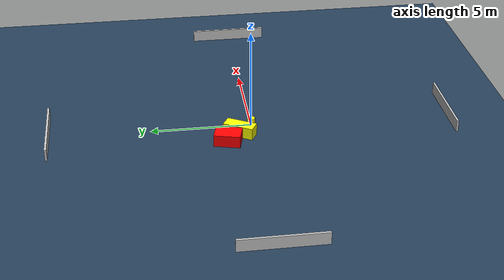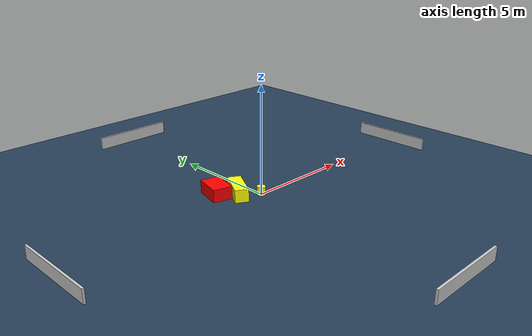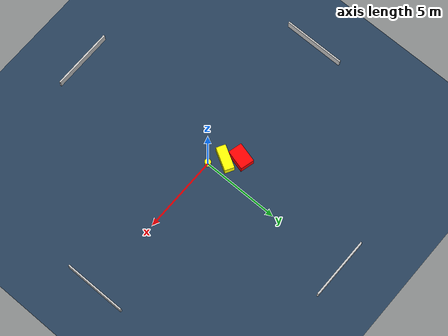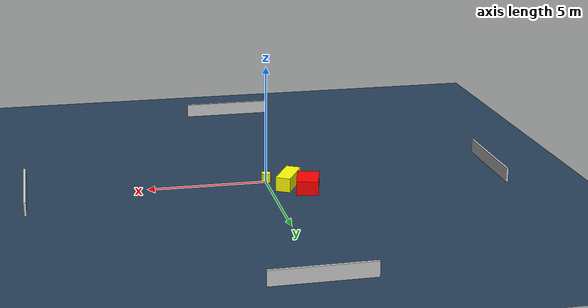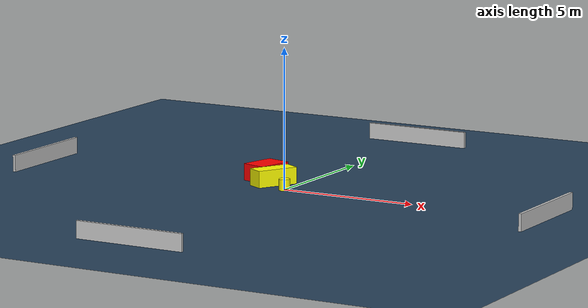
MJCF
<?xml version="1.0" ?>
<mujoco model="generated_environment">
  <option timestep="0.01" integrator="RK4" cone="elliptic"/>
  <default>
    <geom density="1"/>
  </default>
  <asset>
    <texture builtin="gradient" height="3072" name="skybox" rgb1="0.3 0.5 0.7" rgb2="0 0 0" type="skybox" width="512"/>
    <texture builtin="checker" height="300" name="groundplane" rgb1="0.2 0.3 0.4" rgb2="0.1 0.2 0.3" type="2d" width="300"/>
    <material name="groundplane" reflectance="0.2" texrepeat="5 5" texture="groundplane"/>
  </asset>
  <worldbody>
    <light dir="0 0 -1" directional="true" pos="0 0 1.5"/>
    <geom condim="3" friction="0.5 0.005 0.001" material="groundplane" name="floor" pos="0 0 0" size="0 0 0.05" type="plane"/>
    <body name="walls">
      <geom name="wall_1" condim="4" pos="-10.0 0.0 0.3" rgba="0.800000011920929 0.800000011920929 0.800000011920929 1.0" size="0.05 2.0 0.3" type="box"/>
      <geom name="wall_2" condim="4" pos="10.0 0.0 0.3" rgba="0.800000011920929 0.800000011920929 0.800000011920929 1.0" size="0.05 2.0 0.3" type="box"/>
      <geom name="wall_3" condim="4" pos="0.0 -10.0 0.3" rgba="0.800000011920929 0.800000011920929 0.800000011920929 1.0" size="2.0 0.05 0.3" type="box"/>
      <geom name="wall_4" condim="4" pos="0.0 10.0 0.3" rgba="0.800000011920929 0.800000011920929 0.800000011920929 1.0" size="2.0 0.05 0.3" type="box"/>
    </body>
    <body name="robot">
      <joint name="joint_x" type="slide" pos="0 0 0" axis="1 0 0"/>
      <joint name="joint_y" type="slide" pos="0 0 0" axis="0 1 0"/>
      <geom name="robot" type="cylinder" pos="0.0 0.0 0.2" size="0.2 0.2 0.0" mass="5.0" friction="1.0 0.005 0.0001" condim="4" rgba="1.0 1.0 0.0 1.0"/>
    </body>
    <body name="obstacle_1_movable">
      <geom name="obstacle_1_movable" condim="4" pos="-0.8191958076937108 0.6507931834089876 0.3" euler="0 0 330.61422302525955" friction="0.0 0.005 0.001" rgba="1.0 1.0 0.0 1.0" size="0.3113518400896181 0.7638181230405245 0.3" type="box" mass="0.1"/>
      <joint type="free"/>
    </body>
    <body name="obstacle_2_static">
      <geom name="obstacle_2_static" condim="4" pos="-1.5017383260469364 1.3130136137078126 0.3" euler="0 0 255.46307240967104" friction="0.0 0.005 0.001" rgba="1.0 0.0 0.0 1.0" size="0.6466321185573427 0.4554638974824185 0.3" type="box"/>
    </body>
  </worldbody>
  <actuator>
    <motor name="actuator_x" joint="joint_x" gear="1" ctrlrange="-1 1"/>
    <motor name="actuator_y" joint="joint_y" gear="1" ctrlrange="-1 1"/>
  </actuator>
</mujoco>
